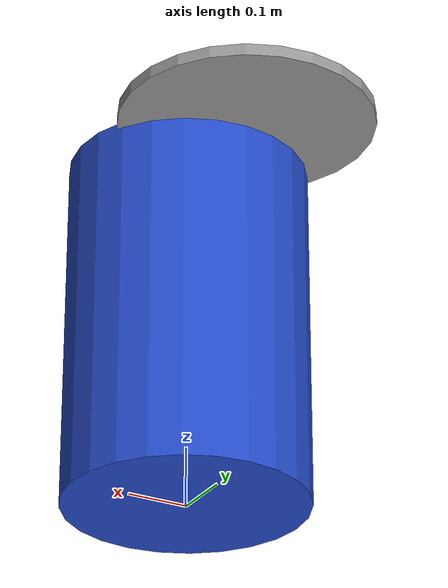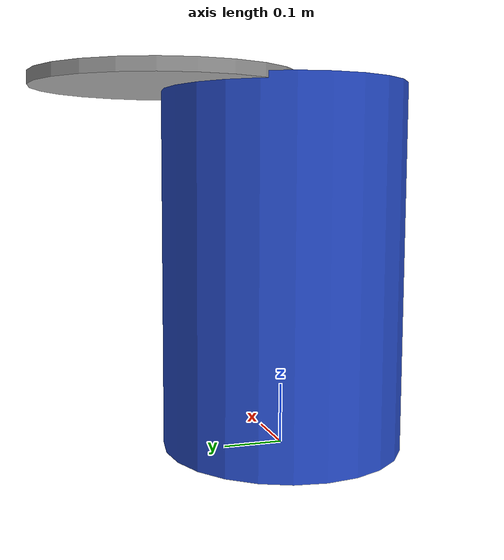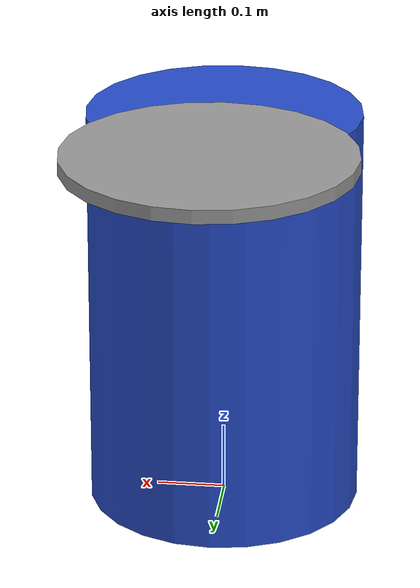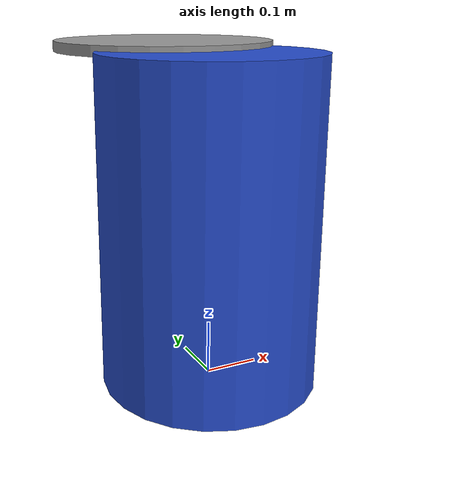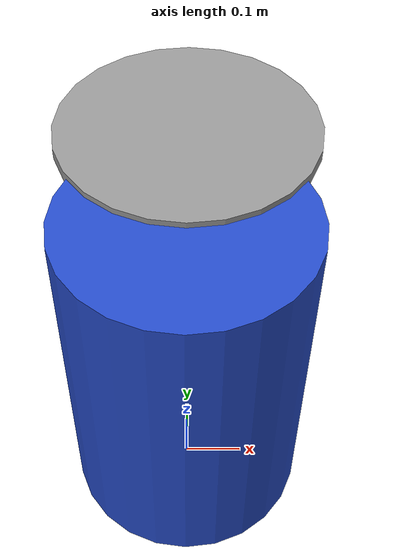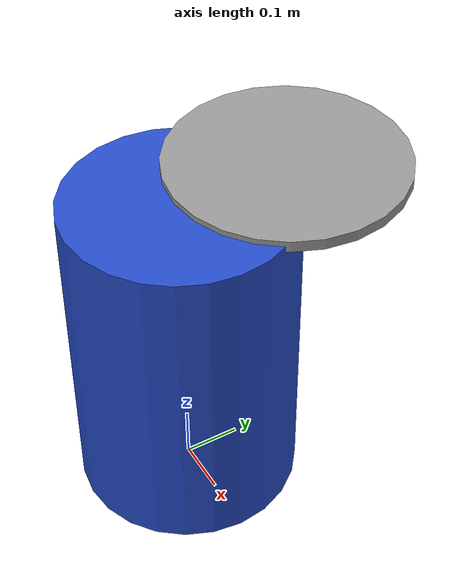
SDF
<?xml version="1.0" ?>
<sdf version="1.4">

  <model name="dustbin">
    <static>false</static>

    <!-- Base Link -->
    <link name="base_link">
      <inertial>
        <pose>0 0 0.3 0 0 0</pose>
        <mass>2.0</mass>
        <inertia>
          <ixx>0.1</ixx>
          <ixy>0</ixy>
          <ixz>0</ixz>
          <iyy>0.1</iyy>
          <iyz>0</iyz>
          <izz>0.1</izz>
        </inertia>
      </inertial>

      <collision name="collision">
        <pose>0 0 0.3 0 0 0</pose>
        <geometry>
          <cylinder>
            <radius>0.2</radius>
            <length>0.6</length>
          </cylinder>
        </geometry>
        <surface>
          <friction>
            <ode>
              <mu>0.2</mu>
              <mu2>0.2</mu2>
            </ode>
          </friction>
        </surface>
      </collision>

      <visual name="visual">
        <pose>0 0 0.3 0 0 0</pose>
        <geometry>
          <cylinder>
            <radius>0.2</radius>
            <length>0.6</length>
          </cylinder>
        </geometry>
        <material>
          <script>
            <uri>file://media/materials/scripts/gazebo.material</uri>
            <name>Gazebo/Blue</name>
          </script>
        </material>
      </visual>
    </link>

    <!-- Lid Link -->

     <link name="lid">
        <pose>0 0.2 0.6 0 0 0</pose>
        <inertial>
            <mass>0.5</mass>
            <inertia>
            <ixx>0.01</ixx>
            <ixy>0</ixy>
            <ixz>0</ixz>
            <iyy>0.01</iyy>
            <iyz>0</iyz>
            <izz>0.01</izz>
            </inertia>
        </inertial>

      <collision name="collision">
        <geometry>
          <cylinder>
            <radius>0.21</radius>
            <length>0.02</length>
          </cylinder>
        </geometry>
        <surface>
          <friction>
            <ode>
              <mu>0.2</mu>
              <mu2>0.2</mu2>
            </ode>
          </friction>
        </surface>
      </collision>

      <visual name="visual">
        <geometry>
          <cylinder>
            <radius>0.21</radius>
            <length>0.02</length>
          </cylinder>
        </geometry>
        <material>
          <script>
            <uri>file://media/materials/scripts/gazebo.material</uri>
            <name>Gazebo/Grey</name>
          </script>
        </material>
      </visual>
    </link>

    <!-- Hinge Joint -->
    <joint name="lid_joint" type="revolute">
      <parent>base_link</parent>
      <child>lid</child>
      <pose>0 0 0 0 0 0</pose>
      <axis>
        <xyz>0 1 0</xyz>
        <limit>
          <lower>0</lower>
          <upper>1.57</upper>
          <effort>10</effort>
          <velocity>1.0</velocity>
        </limit>
        <dynamics>
          <damping>0.5</damping>
          <friction>0.1</friction>
        </dynamics>
      </axis>
    </joint>
  </model>
</sdf>
